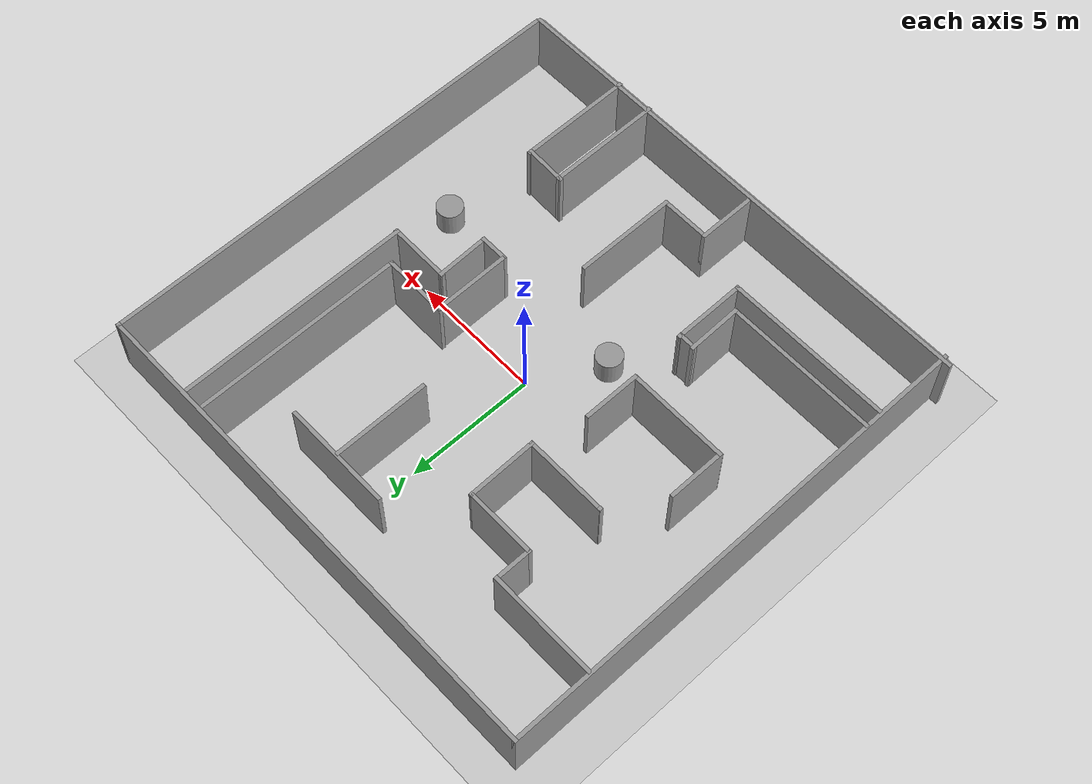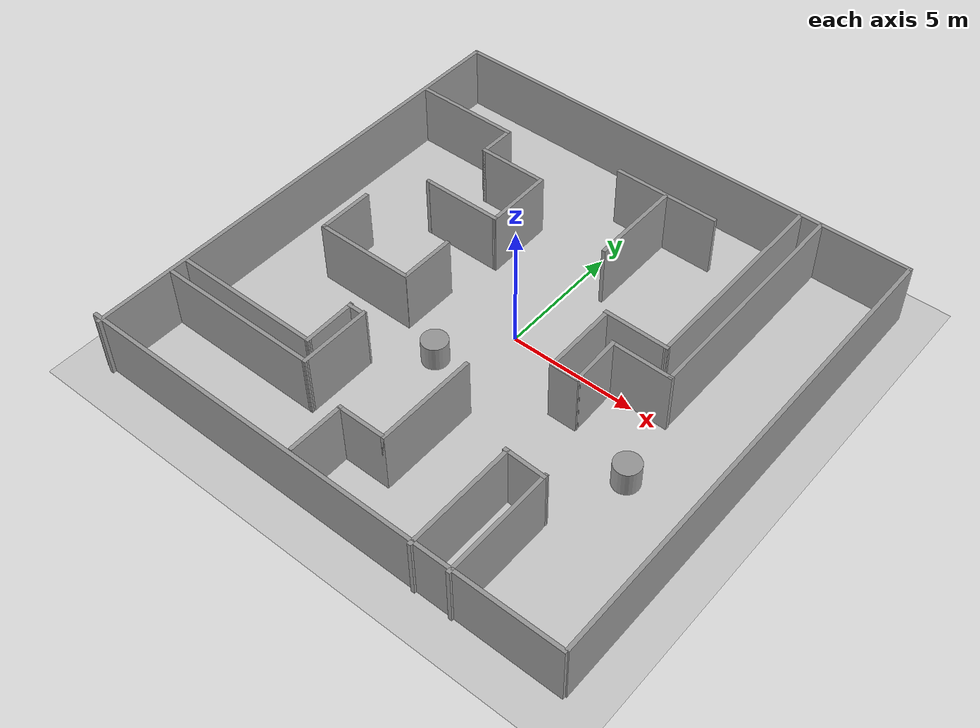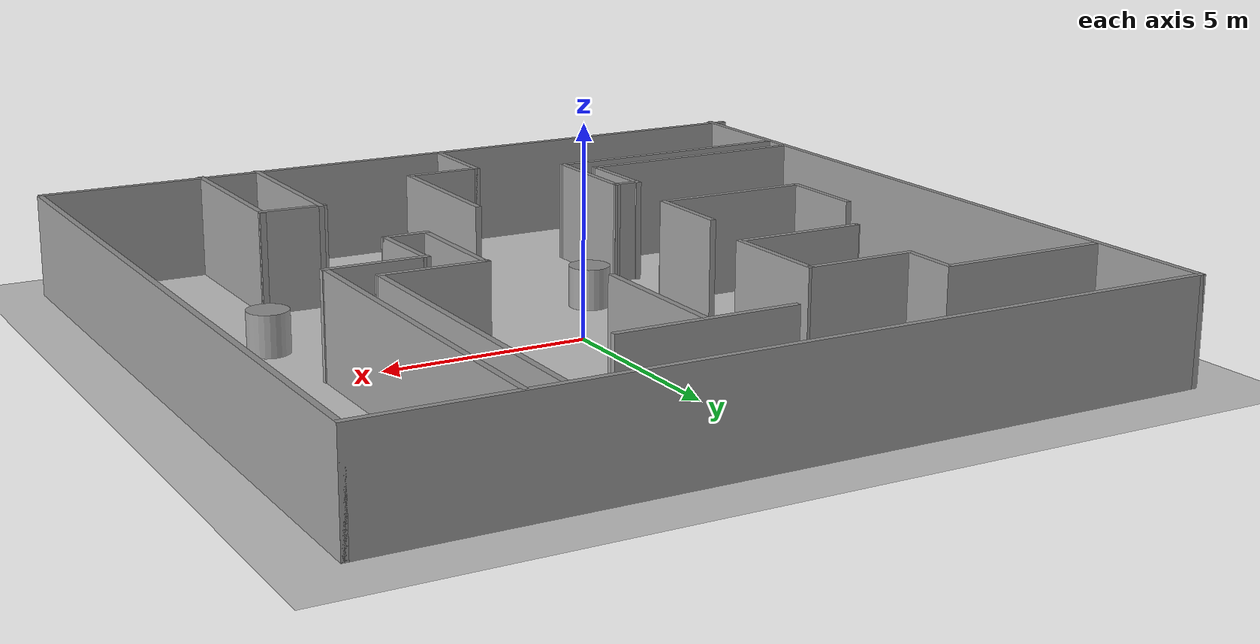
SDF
<sdf version="1.7">
 <world name="default">
  <light name="sun" type="directional">
   <pose>0 0 10 0 -0 0</pose>
   <diffuse>0.8 0.8 0.8 1</diffuse>
   <specular>0.2 0.2 0.2 1</specular>
   <attenuation>
    <range>1000</range>
    <constant>0.9</constant>
    <linear>0.01</linear>
    <quadratic>0.001</quadratic>
   </attenuation>
   <direction>-0.5 0.1 -0.9</direction>
   <spot><inner_angle>0</inner_angle><outer_angle>0</outer_angle><falloff>0</falloff></spot>
  </light>
  <model name="ground_plane">
   <static>1</static>
   <link name="link">
    <collision name="collision">
     <geometry><plane><normal>0 0 1</normal><size>100 100</size></plane></geometry>
     <surface><friction><ode><mu>100</mu><mu2>50</mu2></ode></friction></surface>
    </collision>
    <visual name="visual">
     <cast_shadows>0</cast_shadows>
     <geometry><plane><normal>0 0 1</normal><size>100 100</size></plane></geometry>
     <material>
      <script><uri>file://media/materials/scripts/gazebo.material</uri><name>Gazebo/Grey</name></script>
     </material>
    </visual>
   </link>
  </model>
  <gravity>0 0 -9.8</gravity>
  <magnetic_field>6e-06 2.3e-05 -4.2e-05</magnetic_field>
  <atmosphere type="adiabatic"/>
  <physics type="ode">
   <max_step_size>0.001</max_step_size>
   <real_time_factor>1</real_time_factor>
   <real_time_update_rate>1000</real_time_update_rate>
  </physics>
  <scene><ambient>0.4 0.4 0.4 1</ambient><background>0.7 0.7 0.7 1</background><shadows>1</shadows></scene>
  <audio><device>default</device></audio>
  <spherical_coordinates>
   <surface_model>EARTH_WGS84</surface_model>
   <latitude_deg>0</latitude_deg>
   <longitude_deg>0</longitude_deg>
   <elevation>0</elevation>
   <heading_deg>0</heading_deg>
  </spherical_coordinates>
  <model name="model1">
   <pose>-0.082134 -0.298906 0 0 -0 0</pose>
   <link name="Wall_0">
    <collision name="Wall_0_Collision">
     <geometry><box><size>19.75 0.15 2.5</size></box></geometry>
     <pose>0 0 1.25 0 -0 0</pose>
    </collision>
    <visual name="Wall_0_Visual">
     <pose>0 0 1.25 0 -0 0</pose>
     <geometry><box><size>19.75 0.15 2.5</size></box></geometry>
     <material>
      <script><uri>file://media/materials/scripts/gazebo.material</uri><name>Gazebo/Grey</name></script>
      <ambient>1 1 1 1</ambient>
     </material>
     <meta><layer>0</layer></meta>
    </visual>
    <pose>-0.022973 -9.41239 0 0 -0 3.14159</pose>
   </link>
   <link name="Wall_15">
    <collision name="Wall_15_Collision">
     <geometry><box><size>6 0.15 2.5</size></box></geometry>
     <pose>0 0 1.25 0 -0 0</pose>
    </collision>
    <visual name="Wall_15_Visual">
     <pose>0 0 1.25 0 -0 0</pose>
     <geometry><box><size>6 0.15 2.5</size></box></geometry>
     <material>
      <script><uri>file://media/materials/scripts/gazebo.material</uri><name>Gazebo/Grey</name></script>
      <ambient>1 1 1 1</ambient>
     </material>
     <meta><layer>0</layer></meta>
    </visual>
    <pose>-6.56088 -5.77876 0 0 -0 0</pose>
   </link>
   <link name="Wall_16">
    <collision name="Wall_16_Collision">
     <geometry><box><size>2.18717 0.15 2.5</size></box></geometry>
     <pose>0 0 1.25 0 -0 0</pose>
    </collision>
    <visual name="Wall_16_Visual">
     <pose>0 0 1.25 0 -0 0</pose>
     <geometry><box><size>2.18717 0.15 2.5</size></box></geometry>
     <material>
      <script><uri>file://media/materials/scripts/gazebo.material</uri><name>Gazebo/Grey</name></script>
      <ambient>1 1 1 1</ambient>
     </material>
     <meta><layer>0</layer></meta>
    </visual>
    <pose>-3.65611 -4.76038 0 0 -0 1.59066</pose>
   </link>
   <link name="Wall_18">
    <collision name="Wall_18_Collision">
     <geometry><box><size>8.25 0.15 2.5</size></box></geometry>
     <pose>0 0 1.25 0 -0 0</pose>
    </collision>
    <visual name="Wall_18_Visual">
     <pose>0 0 1.25 0 -0 0</pose>
     <geometry><box><size>8.25 0.15 2.5</size></box></geometry>
     <material>
      <script><uri>file://media/materials/scripts/gazebo.material</uri><name>Gazebo/Grey</name></script>
      <ambient>1 1 1 1</ambient>
     </material>
     <meta><layer>0</layer></meta>
    </visual>
    <pose>5.53081 5.40194 0 0 -0 -1.5708</pose>
   </link>
   <link name="Wall_19">
    <collision name="Wall_19_Collision">
     <geometry><box><size>2.61559 0.15 2.5</size></box></geometry>
     <pose>0 0 1.25 0 -0 0</pose>
    </collision>
    <visual name="Wall_19_Visual">
     <pose>0 0 1.25 0 -0 0</pose>
     <geometry><box><size>2.61559 0.15 2.5</size></box></geometry>
     <material>
      <script><uri>file://media/materials/scripts/gazebo.material</uri><name>Gazebo/Grey</name></script>
      <ambient>1 1 1 1</ambient>
     </material>
     <meta><layer>0</layer></meta>
    </visual>
    <pose>4.29814 1.36953 0 0 -0 3.12732</pose>
   </link>
   <link name="Wall_20">
    <collision name="Wall_20_Collision">
     <geometry><box><size>2.99661 0.15 2.5</size></box></geometry>
     <pose>0 0 1.25 0 -0 0</pose>
    </collision>
    <visual name="Wall_20_Visual">
     <pose>0 0 1.25 0 -0 0</pose>
     <geometry><box><size>2.99661 0.15 2.5</size></box></geometry>
     <material>
      <script><uri>file://media/materials/scripts/gazebo.material</uri><name>Gazebo/Grey</name></script>
      <ambient>1 1 1 1</ambient>
     </material>
     <meta><layer>0</layer></meta>
    </visual>
    <pose>3.11365 -0.071309 0 0 -0 -1.56166</pose>
   </link>
   <link name="Wall_22">
    <collision name="Wall_22_Collision">
     <geometry><box><size>1.14821 0.15 2.5</size></box></geometry>
     <pose>0 0 1.25 0 -0 0</pose>
    </collision>
    <visual name="Wall_22_Visual">
     <pose>0 0 1.25 0 -0 0</pose>
     <geometry><box><size>1.14821 0.15 2.5</size></box></geometry>
     <material>
      <script><uri>file://media/materials/scripts/gazebo.material</uri><name>Gazebo/Grey</name></script>
      <ambient>1 1 1 1</ambient>
     </material>
     <meta><layer>0</layer></meta>
    </visual>
    <pose>3.62576 -1.55574 0 0 -0 0</pose>
   </link>
   <link name="Wall_23">
    <collision name="Wall_23_Collision">
     <geometry><box><size>2.06782 0.15 2.5</size></box></geometry>
     <pose>0 0 1.25 0 -0 0</pose>
    </collision>
    <visual name="Wall_23_Visual">
     <pose>0 0 1.25 0 -0 0</pose>
     <geometry><box><size>2.06782 0.15 2.5</size></box></geometry>
     <material>
      <script><uri>file://media/materials/scripts/gazebo.material</uri><name>Gazebo/Grey</name></script>
      <ambient>1 1 1 1</ambient>
     </material>
     <meta><layer>0</layer></meta>
    </visual>
    <pose>4.09427 -0.53613 0 0 -0 1.6027</pose>
   </link>
   <link name="Wall_24">
    <collision name="Wall_24_Collision">
     <geometry><box><size>2.50257 0.15 2.5</size></box></geometry>
     <pose>0 0 1.25 0 -0 0</pose>
    </collision>
    <visual name="Wall_24_Visual">
     <pose>0 0 1.25 0 -0 0</pose>
     <geometry><box><size>2.50257 0.15 2.5</size></box></geometry>
     <material>
      <script><uri>file://media/materials/scripts/gazebo.material</uri><name>Gazebo/Grey</name></script>
      <ambient>1 1 1 1</ambient>
     </material>
     <meta><layer>0</layer></meta>
    </visual>
    <pose>5.20466 0.404704 0 0 -0 -0.014954</pose>
   </link>
   <link name="Wall_26">
    <collision name="Wall_26_Collision">
     <geometry><box><size>9.25 0.15 2.5</size></box></geometry>
     <pose>0 0 1.25 0 -0 0</pose>
    </collision>
    <visual name="Wall_26_Visual">
     <pose>0 0 1.25 0 -0 0</pose>
     <geometry><box><size>9.25 0.15 2.5</size></box></geometry>
     <material>
      <script><uri>file://media/materials/scripts/gazebo.material</uri><name>Gazebo/Grey</name></script>
      <ambient>1 1 1 1</ambient>
     </material>
     <meta><layer>0</layer></meta>
    </visual>
    <pose>6.35473 4.93901 0 0 -0 -1.5708</pose>
   </link>
   <link name="Wall_29">
    <collision name="Wall_29_Collision">
     <geometry><box><size>0.15 0.15 2.5</size></box></geometry>
     <pose>0 0 1.25 0 -0 0</pose>
    </collision>
    <visual name="Wall_29_Visual">
     <pose>0 0 1.25 0 -0 0</pose>
     <geometry><box><size>0.15 0.15 2.5</size></box></geometry>
     <material>
      <script><uri>file://media/materials/scripts/gazebo.material</uri><name>Gazebo/Grey</name></script>
      <ambient>1 1 1 1</ambient>
     </material>
     <meta><layer>0</layer></meta>
    </visual>
    <pose>-5.80567 2.52453 0 0 -0 0</pose>
   </link>
   <link name="Wall_3">
    <collision name="Wall_3_Collision">
     <geometry><box><size>19.25 0.15 2.5</size></box></geometry>
     <pose>0 0 1.25 0 -0 0</pose>
    </collision>
    <visual name="Wall_3_Visual">
     <pose>0 0 1.25 0 -0 0</pose>
     <geometry><box><size>19.25 0.15 2.5</size></box></geometry>
     <material>
      <script><uri>file://media/materials/scripts/gazebo.material</uri><name>Gazebo/Grey</name></script>
      <ambient>1 1 1 1</ambient>
     </material>
     <meta><layer>0</layer></meta>
    </visual>
    <pose>-9.52703 -0 0 0 -0 1.5708</pose>
   </link>
   <link name="Wall_37">
    <collision name="Wall_37_Collision">
     <geometry><box><size>6.5 0.15 2.5</size></box></geometry>
     <pose>0 0 1.25 0 -0 0</pose>
    </collision>
    <visual name="Wall_37_Visual">
     <pose>0 0 1.25 0 -0 0</pose>
     <geometry><box><size>6.5 0.15 2.5</size></box></geometry>
     <material>
      <script><uri>file://media/materials/scripts/gazebo.material</uri><name>Gazebo/Grey</name></script>
      <ambient>1 1 1 1</ambient>
     </material>
     <meta><layer>0</layer></meta>
    </visual>
    <pose>-6.23906 -6.47565 0 0 -0 0</pose>
   </link>
   <link name="Wall_38">
    <collision name="Wall_38_Collision">
     <geometry><box><size>2.88368 0.15 2.5</size></box></geometry>
     <pose>0 0 1.25 0 -0 0</pose>
    </collision>
    <visual name="Wall_38_Visual">
     <pose>0 0 1.25 0 -0 0</pose>
     <geometry><box><size>2.88368 0.15 2.5</size></box></geometry>
     <material>
      <script><uri>file://media/materials/scripts/gazebo.material</uri><name>Gazebo/Grey</name></script>
      <ambient>1 1 1 1</ambient>
     </material>
     <meta><layer>0</layer></meta>
    </visual>
    <pose>-3.0702 -5.10883 0 0 -0 1.57529</pose>
   </link>
   <link name="Wall_39">
    <collision name="Wall_39_Collision">
     <geometry><box><size>0.15 0.15 2.5</size></box></geometry>
     <pose>0 0 1.25 0 -0 0</pose>
    </collision>
    <visual name="Wall_39_Visual">
     <pose>0 0 1.25 0 -0 0</pose>
     <geometry><box><size>0.15 0.15 2.5</size></box></geometry>
     <material>
      <script><uri>file://media/materials/scripts/gazebo.material</uri><name>Gazebo/Grey</name></script>
      <ambient>1 1 1 1</ambient>
     </material>
     <meta><layer>0</layer></meta>
    </visual>
    <pose>-3.07633 -3.742 0 0 -0 0</pose>
   </link>
   <link name="Wall_41">
    <collision name="Wall_41_Collision">
     <geometry><box><size>0.75 0.15 2.5</size></box></geometry>
     <pose>0 0 1.25 0 -0 0</pose>
    </collision>
    <visual name="Wall_41_Visual">
     <pose>0 0 1.25 0 -0 0</pose>
     <geometry><box><size>0.75 0.15 2.5</size></box></geometry>
     <material>
      <script><uri>file://media/materials/scripts/gazebo.material</uri><name>Gazebo/Grey</name></script>
      <ambient>1 1 1 1</ambient>
     </material>
     <meta><layer>0</layer></meta>
    </visual>
    <pose>-3.37634 -3.78245 0 0 -0 0</pose>
   </link>
   <link name="Wall_44">
    <collision name="Wall_44_Collision">
     <geometry><box><size>4.5 0.15 2.5</size></box></geometry>
     <pose>0 0 1.25 0 -0 0</pose>
    </collision>
    <visual name="Wall_44_Visual">
     <pose>0 0 1.25 0 -0 0</pose>
     <geometry><box><size>4.5 0.15 2.5</size></box></geometry>
     <material>
      <script><uri>file://media/materials/scripts/gazebo.material</uri><name>Gazebo/Grey</name></script>
      <ambient>1 1 1 1</ambient>
     </material>
     <meta><layer>0</layer></meta>
    </visual>
    <pose>4.231 -7.32218 0 0 -0 -1.5708</pose>
   </link>
   <link name="Wall_46">
    <collision name="Wall_46_Collision">
     <geometry><box><size>1.69003 0.15 2.5</size></box></geometry>
     <pose>0 0 1.25 0 -0 0</pose>
    </collision>
    <visual name="Wall_46_Visual">
     <pose>0 0 1.25 0 -0 0</pose>
     <geometry><box><size>1.69003 0.15 2.5</size></box></geometry>
     <material>
      <script><uri>file://media/materials/scripts/gazebo.material</uri><name>Gazebo/Grey</name></script>
      <ambient>1 1 1 1</ambient>
     </material>
     <meta><layer>0</layer></meta>
    </visual>
    <pose>4.93923 -5.17777 0 0 -0 -0.039737</pose>
   </link>
   <link name="Wall_47">
    <collision name="Wall_47_Collision">
     <geometry><box><size>4.5 0.15 2.5</size></box></geometry>
     <pose>0 0 1.25 0 -0 0</pose>
    </collision>
    <visual name="Wall_47_Visual">
     <pose>0 0 1.25 0 -0 0</pose>
     <geometry><box><size>4.5 0.15 2.5</size></box></geometry>
     <material>
      <script><uri>file://media/materials/scripts/gazebo.material</uri><name>Gazebo/Grey</name></script>
      <ambient>1 1 1 1</ambient>
     </material>
     <meta><layer>0</layer></meta>
    </visual>
    <pose>5.70864 -7.32218 0 0 -0 -1.5708</pose>
   </link>
   <link name="Wall_49">
    <collision name="Wall_49_Collision">
     <geometry><box><size>4.25 0.15 2.5</size></box></geometry>
     <pose>0 0 1.25 0 -0 0</pose>
    </collision>
    <visual name="Wall_49_Visual">
     <pose>0 0 1.25 0 -0 0</pose>
     <geometry><box><size>4.25 0.15 2.5</size></box></geometry>
     <material>
      <script><uri>file://media/materials/scripts/gazebo.material</uri><name>Gazebo/Grey</name></script>
      <ambient>1 1 1 1</ambient>
     </material>
     <meta><layer>0</layer></meta>
    </visual>
    <pose>-7.40099 6.48449 0 0 -0 0</pose>
   </link>
   <link name="Wall_50">
    <collision name="Wall_50_Collision">
     <geometry><box><size>1.5 0.15 2.5</size></box></geometry>
     <pose>0 0 1.25 0 -0 0</pose>
    </collision>
    <visual name="Wall_50_Visual">
     <pose>0 0 1.25 0 -0 0</pose>
     <geometry><box><size>1.5 0.15 2.5</size></box></geometry>
     <material>
      <script><uri>file://media/materials/scripts/gazebo.material</uri><name>Gazebo/Grey</name></script>
      <ambient>1 1 1 1</ambient>
     </material>
     <meta><layer>0</layer></meta>
    </visual>
    <pose>-5.35099 5.80948 0 0 -0 -1.5708</pose>
   </link>
   <link name="Wall_51">
    <collision name="Wall_51_Collision">
     <geometry><box><size>2.74207 0.15 2.5</size></box></geometry>
     <pose>0 0 1.25 0 -0 0</pose>
    </collision>
    <visual name="Wall_51_Visual">
     <pose>0 0 1.25 0 -0 0</pose>
     <geometry><box><size>2.74207 0.15 2.5</size></box></geometry>
     <material>
      <script><uri>file://media/materials/scripts/gazebo.material</uri><name>Gazebo/Grey</name></script>
      <ambient>1 1 1 1</ambient>
     </material>
     <meta><layer>0</layer></meta>
    </visual>
    <pose>-4.05496 5.13448 0 0 -0 0</pose>
   </link>
   <link name="Wall_52">
    <collision name="Wall_52_Collision">
     <geometry><box><size>2.75684 0.15 2.5</size></box></geometry>
     <pose>0 0 1.25 0 -0 0</pose>
    </collision>
    <visual name="Wall_52_Visual">
     <pose>0 0 1.25 0 -0 0</pose>
     <geometry><box><size>2.75684 0.15 2.5</size></box></geometry>
     <material>
      <script><uri>file://media/materials/scripts/gazebo.material</uri><name>Gazebo/Grey</name></script>
      <ambient>1 1 1 1</ambient>
     </material>
     <meta><layer>0</layer></meta>
    </visual>
    <pose>-2.69231 3.83122 0 0 -0 -1.55519</pose>
   </link>
   <link name="Wall_53">
    <collision name="Wall_53_Collision">
     <geometry><box><size>3.25 0.15 2.5</size></box></geometry>
     <pose>0 0 1.25 0 -0 0</pose>
    </collision>
    <visual name="Wall_53_Visual">
     <pose>0 0 1.25 0 -0 0</pose>
     <geometry><box><size>3.25 0.15 2.5</size></box></geometry>
     <material>
      <script><uri>file://media/materials/scripts/gazebo.material</uri><name>Gazebo/Grey</name></script>
      <ambient>1 1 1 1</ambient>
     </material>
     <meta><layer>0</layer></meta>
    </visual>
    <pose>-4.23066 2.52796 0 0 -0 3.14159</pose>
   </link>
   <link name="Wall_55">
    <collision name="Wall_55_Collision">
     <geometry><box><size>2.25 0.15 2.5</size></box></geometry>
     <pose>0 0 1.25 0 -0 0</pose>
    </collision>
    <visual name="Wall_55_Visual">
     <pose>0 0 1.25 0 -0 0</pose>
     <geometry><box><size>2.25 0.15 2.5</size></box></geometry>
     <material>
      <script><uri>file://media/materials/scripts/gazebo.material</uri><name>Gazebo/Grey</name></script>
      <ambient>1 1 1 1</ambient>
     </material>
     <meta><layer>0</layer></meta>
    </visual>
    <pose>-7.0238 -0.531318 0 0 -0 -1.5708</pose>
   </link>
   <link name="Wall_56">
    <collision name="Wall_56_Collision">
     <geometry><box><size>4 0.15 2.5</size></box></geometry>
     <pose>0 0 1.25 0 -0 0</pose>
    </collision>
    <visual name="Wall_56_Visual">
     <pose>0 0 1.25 0 -0 0</pose>
     <geometry><box><size>4 0.15 2.5</size></box></geometry>
     <material>
      <script><uri>file://media/materials/scripts/gazebo.material</uri><name>Gazebo/Grey</name></script>
      <ambient>1 1 1 1</ambient>
     </material>
     <meta><layer>0</layer></meta>
    </visual>
    <pose>-5.0988 -1.59653 0 0 -0 0</pose>
   </link>
   <link name="Wall_57">
    <collision name="Wall_57_Collision">
     <geometry><box><size>2.25 0.15 2.5</size></box></geometry>
     <pose>0 0 1.25 0 -0 0</pose>
    </collision>
    <visual name="Wall_57_Visual">
     <pose>0 0 1.25 0 -0 0</pose>
     <geometry><box><size>2.25 0.15 2.5</size></box></geometry>
     <material>
      <script><uri>file://media/materials/scripts/gazebo.material</uri><name>Gazebo/Grey</name></script>
      <ambient>1 1 1 1</ambient>
     </material>
     <meta><layer>0</layer></meta>
    </visual>
    <pose>-3.1738 -0.531318 0 0 -0 1.5708</pose>
   </link>
   <link name="Wall_61">
    <collision name="Wall_61_Collision">
     <geometry><box><size>4.25 0.15 2.5</size></box></geometry>
     <pose>0 0 1.25 0 -0 0</pose>
    </collision>
    <visual name="Wall_61_Visual">
     <pose>0 0 1.25 0 -0 0</pose>
     <geometry><box><size>4.25 0.15 2.5</size></box></geometry>
     <material>
      <script><uri>file://media/materials/scripts/gazebo.material</uri><name>Gazebo/Grey</name></script>
      <ambient>1 1 1 1</ambient>
     </material>
     <meta><layer>0</layer></meta>
    </visual>
    <pose>1.24447 7.37291 0 0 -0 0</pose>
   </link>
   <link name="Wall_67">
    <collision name="Wall_67_Collision">
     <geometry><box><size>3.75 0.15 2.5</size></box></geometry>
     <pose>0 0 1.25 0 -0 0</pose>
    </collision>
    <visual name="Wall_67_Visual">
     <pose>0 0 1.25 0 -0 0</pose>
     <geometry><box><size>3.75 0.15 2.5</size></box></geometry>
     <material>
      <script><uri>file://media/materials/scripts/gazebo.material</uri><name>Gazebo/Grey</name></script>
      <ambient>1 1 1 1</ambient>
     </material>
     <meta><layer>0</layer></meta>
    </visual>
    <pose>1.26201 5.49626 0 0 -0 -1.5708</pose>
   </link>
   <link name="Wall_7">
    <collision name="Wall_7_Collision">
     <geometry><box><size>19.5 0.15 2.5</size></box></geometry>
     <pose>0 0 1.25 0 -0 0</pose>
    </collision>
    <visual name="Wall_7_Visual">
     <pose>0 0 1.25 0 -0 0</pose>
     <geometry><box><size>19.5 0.15 2.5</size></box></geometry>
     <material>
      <script><uri>file://media/materials/scripts/gazebo.material</uri><name>Gazebo/Grey</name></script>
      <ambient>1 1 1 1</ambient>
     </material>
     <meta><layer>0</layer></meta>
    </visual>
    <pose>0.147972 9.55 0 0 -0 0</pose>
   </link>
   <link name="Wall_71">
    <collision name="Wall_71_Collision">
     <geometry><box><size>2.25 0.15 2.5</size></box></geometry>
     <pose>0 0 1.25 0 -0 0</pose>
    </collision>
    <visual name="Wall_71_Visual">
     <pose>0 0 1.25 0 -0 0</pose>
     <geometry><box><size>2.25 0.15 2.5</size></box></geometry>
     <material>
      <script><uri>file://media/materials/scripts/gazebo.material</uri><name>Gazebo/Grey</name></script>
      <ambient>1 1 1 1</ambient>
     </material>
     <meta><layer>0</layer></meta>
    </visual>
    <pose>-0.854055 -8.19289 0 0 -0 1.5708</pose>
   </link>
   <link name="Wall_72">
    <collision name="Wall_72_Collision">
     <geometry><box><size>2 0.15 2.5</size></box></geometry>
     <pose>0 0 1.25 0 -0 0</pose>
    </collision>
    <visual name="Wall_72_Visual">
     <pose>0 0 1.25 0 -0 0</pose>
     <geometry><box><size>2 0.15 2.5</size></box></geometry>
     <material>
      <script><uri>file://media/materials/scripts/gazebo.material</uri><name>Gazebo/Grey</name></script>
      <ambient>1 1 1 1</ambient>
     </material>
     <meta><layer>0</layer></meta>
    </visual>
    <pose>0.070945 -7.14289 0 0 -0 0</pose>
   </link>
   <link name="Wall_73">
    <collision name="Wall_73_Collision">
     <geometry><box><size>4 0.15 2.5</size></box></geometry>
     <pose>0 0 1.25 0 -0 0</pose>
    </collision>
    <visual name="Wall_73_Visual">
     <pose>0 0 1.25 0 -0 0</pose>
     <geometry><box><size>4 0.15 2.5</size></box></geometry>
     <material>
      <script><uri>file://media/materials/scripts/gazebo.material</uri><name>Gazebo/Grey</name></script>
      <ambient>1 1 1 1</ambient>
     </material>
     <meta><layer>0</layer></meta>
    </visual>
    <pose>0.995945 -5.21789 0 0 -0 1.5708</pose>
   </link>
   <link name="Wall_8">
    <collision name="Wall_8_Collision">
     <geometry><box><size>19 0.15 2.5</size></box></geometry>
     <pose>0 0 1.25 0 -0 0</pose>
    </collision>
    <visual name="Wall_8_Visual">
     <pose>0 0 1.25 0 -0 0</pose>
     <geometry><box><size>19 0.15 2.5</size></box></geometry>
     <material>
      <script><uri>file://media/materials/scripts/gazebo.material</uri><name>Gazebo/Grey</name></script>
      <ambient>1 1 1 1</ambient>
     </material>
     <meta><layer>0</layer></meta>
    </visual>
    <pose>9.82297 0.125 0 0 -0 -1.5708</pose>
   </link>
   <static>1</static>
  </model>
  <model name="unit_cylinder">
   <pose>6.63354 -2.5398 0.499993 -3e-06 -4e-06 -0</pose>
   <link name="link">
    <inertial>
     <mass>1</mass>
     <inertia><ixx>0.145833</ixx><ixy>0</ixy><ixz>0</ixz><iyy>0.145833</iyy><iyz>0</iyz><izz>0.125</izz></inertia>
    </inertial>
    <collision name="collision">
     <geometry><cylinder><radius>0.5</radius><length>1</length></cylinder></geometry>
    </collision>
    <visual name="visual">
     <geometry><cylinder><radius>0.5</radius><length>1</length></cylinder></geometry>
     <material>
      <script><name>Gazebo/Grey</name><uri>file://media/materials/scripts/gazebo.material</uri></script>
     </material>
    </visual>
   </link>
  </model>
  <model name="unit_cylinder_0">
   <pose>-1.51538 -2.46433 0.499997 3e-06 4e-06 -0</pose>
   <link name="link">
    <inertial>
     <mass>1</mass>
     <inertia><ixx>0.145833</ixx><ixy>0</ixy><ixz>0</ixz><iyy>0.145833</iyy><iyz>0</iyz><izz>0.125</izz></inertia>
    </inertial>
    <collision name="collision">
     <geometry><cylinder><radius>0.5</radius><length>1</length></cylinder></geometry>
    </collision>
    <visual name="visual">
     <geometry><cylinder><radius>0.5</radius><length>1</length></cylinder></geometry>
     <material>
      <script><name>Gazebo/Grey</name><uri>file://media/materials/scripts/gazebo.material</uri></script>
     </material>
    </visual>
   </link>
  </model>
 </world>
</sdf>
